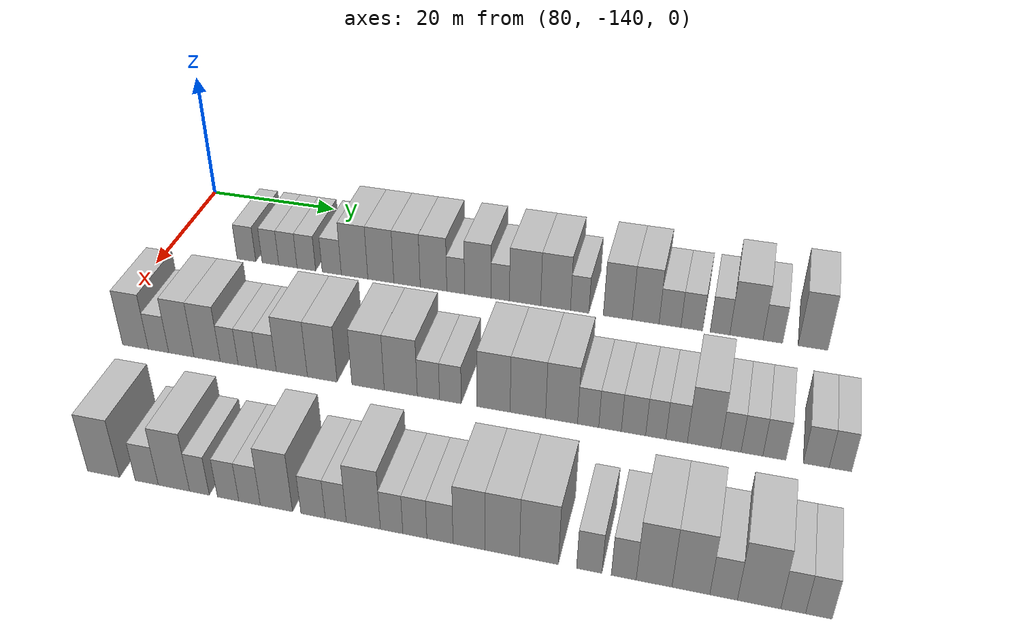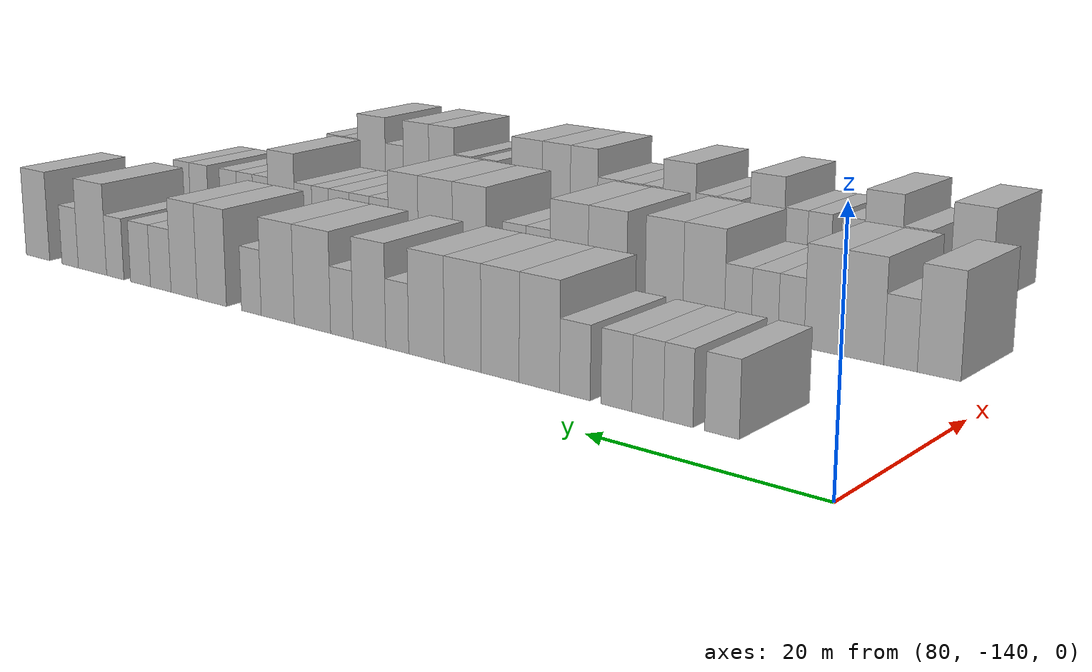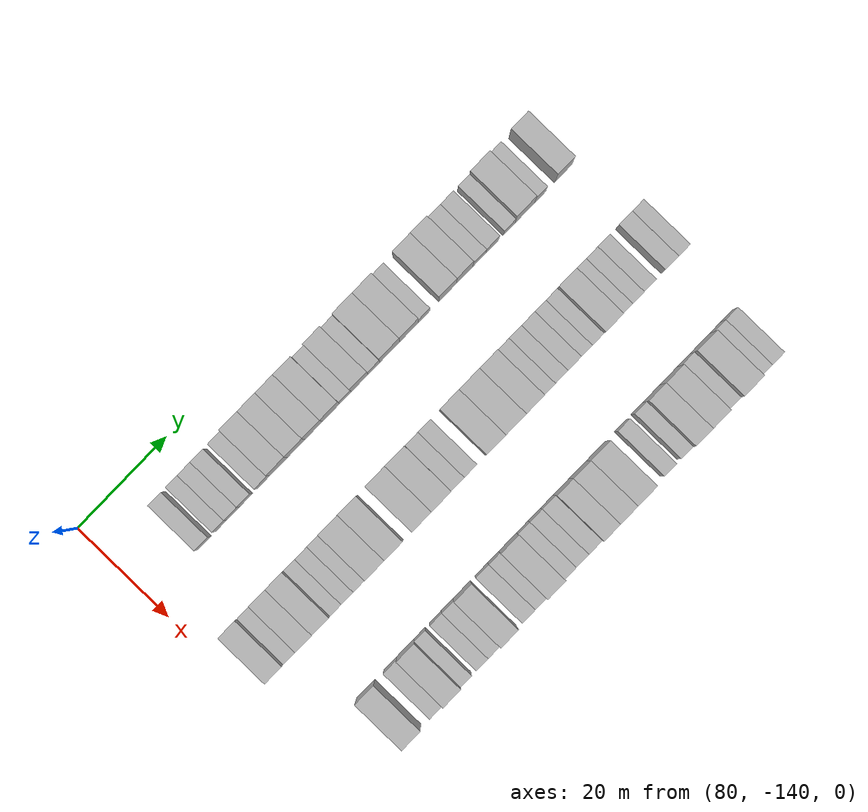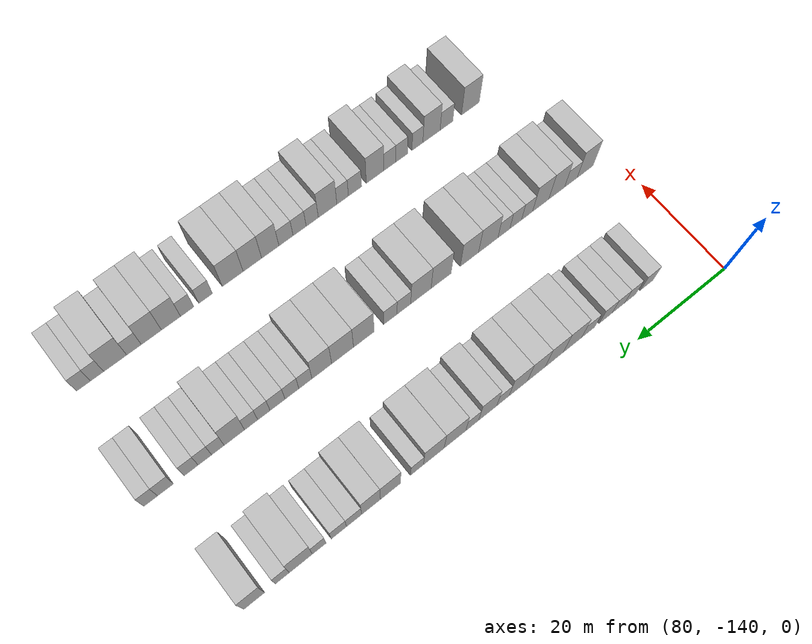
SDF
<sdf version="1.6">
 <world name="default">
  <model name="building_631">
   <static>1</static>
   <pose>91.0000 -127.6711 0 0.000000 0.000000 0.000000</pose>
   <link name="link">
    <pose>0 0 3.00 0 0 0</pose>
    <collision name="collision"><geometry><box><size>10.0000 2.9213 6.0000</size></box></geometry></collision>
    <visual name="visual">
     <cast_shadows>0</cast_shadows>
     <geometry><box><size>10.0000 2.9213 6.0000</size></box></geometry>
     <material>
      <script>
       <uri>model://HANNAS_wall/materials/scripts</uri>
       <uri>model://HANNAS_wall/materials/textures</uri>
       <name>vrc/HANNAS_wall</name>
      </script>
     </material>
    </visual>
   </link>
  </model>
  <model name="building_632">
   <static>1</static>
   <pose>91.0000 -123.9136 0 0.000000 0.000000 0.000000</pose>
   <link name="link">
    <pose>0 0 3.00 0 0 0</pose>
    <collision name="collision"><geometry><box><size>10.0000 2.5935 6.0000</size></box></geometry></collision>
    <visual name="visual">
     <cast_shadows>0</cast_shadows>
     <geometry><box><size>10.0000 2.5935 6.0000</size></box></geometry>
     <material>
      <script>
       <uri>model://HANNAS_wall/materials/scripts</uri>
       <uri>model://HANNAS_wall/materials/textures</uri>
       <name>vrc/HANNAS_wall</name>
      </script>
     </material>
    </visual>
   </link>
  </model>
  <model name="building_633">
   <static>1</static>
   <pose>91.0000 -121.2052 0 0.000000 0.000000 0.000000</pose>
   <link name="link">
    <pose>0 0 3.00 0 0 0</pose>
    <collision name="collision"><geometry><box><size>10.0000 2.8233 6.0000</size></box></geometry></collision>
    <visual name="visual">
     <cast_shadows>0</cast_shadows>
     <geometry><box><size>10.0000 2.8233 6.0000</size></box></geometry>
     <material>
      <script>
       <uri>model://HANNAS_wall/materials/scripts</uri>
       <uri>model://HANNAS_wall/materials/textures</uri>
       <name>vrc/HANNAS_wall</name>
      </script>
     </material>
    </visual>
   </link>
  </model>
  <model name="building_634">
   <static>1</static>
   <pose>91.0000 -118.3632 0 0.000000 0.000000 0.000000</pose>
   <link name="link">
    <pose>0 0 3.00 0 0 0</pose>
    <collision name="collision"><geometry><box><size>10.0000 2.8609 6.0000</size></box></geometry></collision>
    <visual name="visual">
     <cast_shadows>0</cast_shadows>
     <geometry><box><size>10.0000 2.8609 6.0000</size></box></geometry>
     <material>
      <script>
       <uri>model://HANNAS_wall/materials/scripts</uri>
       <uri>model://HANNAS_wall/materials/textures</uri>
       <name>vrc/HANNAS_wall</name>
      </script>
     </material>
    </visual>
   </link>
  </model>
  <model name="building_635">
   <static>1</static>
   <pose>91.0000 -114.4702 0 0.000000 0.000000 0.000000</pose>
   <link name="link">
    <pose>0 0 3.00 0 0 0</pose>
    <collision name="collision"><geometry><box><size>10.0000 2.9251 6.0000</size></box></geometry></collision>
    <visual name="visual">
     <cast_shadows>0</cast_shadows>
     <geometry><box><size>10.0000 2.9251 6.0000</size></box></geometry>
     <material>
      <script>
       <uri>model://HANNAS_wall/materials/scripts</uri>
       <uri>model://HANNAS_wall/materials/textures</uri>
       <name>vrc/HANNAS_wall</name>
      </script>
     </material>
    </visual>
   </link>
  </model>
  <model name="building_636">
   <static>1</static>
   <pose>91.0000 -111.0083 0 0.000000 0.000000 0.000000</pose>
   <link name="link">
    <pose>0 0 4.50 0 0 0</pose>
    <collision name="collision"><geometry><box><size>10.0000 3.9987 9.0000</size></box></geometry></collision>
    <visual name="visual">
     <cast_shadows>0</cast_shadows>
     <geometry><box><size>10.0000 3.9987 9.0000</size></box></geometry>
     <material>
      <script>
       <uri>model://HANNAS_wall/materials/scripts</uri>
       <uri>model://HANNAS_wall/materials/textures</uri>
       <name>vrc/HANNAS_wall</name>
      </script>
     </material>
    </visual>
   </link>
  </model>
  <model name="building_637">
   <static>1</static>
   <pose>91.0000 -107.0593 0 0.000000 0.000000 0.000000</pose>
   <link name="link">
    <pose>0 0 4.50 0 0 0</pose>
    <collision name="collision"><geometry><box><size>10.0000 3.8993 9.0000</size></box></geometry></collision>
    <visual name="visual">
     <cast_shadows>0</cast_shadows>
     <geometry><box><size>10.0000 3.8993 9.0000</size></box></geometry>
     <material>
      <script>
       <uri>model://HANNAS_wall/materials/scripts</uri>
       <uri>model://HANNAS_wall/materials/textures</uri>
       <name>vrc/HANNAS_wall</name>
      </script>
     </material>
    </visual>
   </link>
  </model>
  <model name="building_638">
   <static>1</static>
   <pose>91.0000 -103.1571 0 0.000000 0.000000 0.000000</pose>
   <link name="link">
    <pose>0 0 4.50 0 0 0</pose>
    <collision name="collision"><geometry><box><size>10.0000 3.9052 9.0000</size></box></geometry></collision>
    <visual name="visual">
     <cast_shadows>0</cast_shadows>
     <geometry><box><size>10.0000 3.9052 9.0000</size></box></geometry>
     <material>
      <script>
       <uri>model://HANNAS_wall/materials/scripts</uri>
       <uri>model://HANNAS_wall/materials/textures</uri>
       <name>vrc/HANNAS_wall</name>
      </script>
     </material>
    </visual>
   </link>
  </model>
  <model name="building_639">
   <static>1</static>
   <pose>91.0000 -99.2516 0 0.000000 0.000000 0.000000</pose>
   <link name="link">
    <pose>0 0 4.50 0 0 0</pose>
    <collision name="collision"><geometry><box><size>10.0000 3.9057 9.0000</size></box></geometry></collision>
    <visual name="visual">
     <cast_shadows>0</cast_shadows>
     <geometry><box><size>10.0000 3.9057 9.0000</size></box></geometry>
     <material>
      <script>
       <uri>model://HANNAS_wall/materials/scripts</uri>
       <uri>model://HANNAS_wall/materials/textures</uri>
       <name>vrc/HANNAS_wall</name>
      </script>
     </material>
    </visual>
   </link>
  </model>
  <model name="building_640">
   <static>1</static>
   <pose>91.0000 -96.0052 0 0.000000 0.000000 0.000000</pose>
   <link name="link">
    <pose>0 0 3.00 0 0 0</pose>
    <collision name="collision"><geometry><box><size>10.0000 2.5872 6.0000</size></box></geometry></collision>
    <visual name="visual">
     <cast_shadows>0</cast_shadows>
     <geometry><box><size>10.0000 2.5872 6.0000</size></box></geometry>
     <material>
      <script>
       <uri>model://HANNAS_wall/materials/scripts</uri>
       <uri>model://HANNAS_wall/materials/textures</uri>
       <name>vrc/HANNAS_wall</name>
      </script>
     </material>
    </visual>
   </link>
  </model>
  <model name="building_641">
   <static>1</static>
   <pose>91.0000 -92.8108 0 0.000000 0.000000 0.000000</pose>
   <link name="link">
    <pose>0 0 4.50 0 0 0</pose>
    <collision name="collision"><geometry><box><size>10.0000 3.8016 9.0000</size></box></geometry></collision>
    <visual name="visual">
     <cast_shadows>0</cast_shadows>
     <geometry><box><size>10.0000 3.8016 9.0000</size></box></geometry>
     <material>
      <script>
       <uri>model://HANNAS_wall/materials/scripts</uri>
       <uri>model://HANNAS_wall/materials/textures</uri>
       <name>vrc/HANNAS_wall</name>
      </script>
     </material>
    </visual>
   </link>
  </model>
  <model name="building_642">
   <static>1</static>
   <pose>91.0000 -89.5830 0 0.000000 0.000000 0.000000</pose>
   <link name="link">
    <pose>0 0 3.00 0 0 0</pose>
    <collision name="collision"><geometry><box><size>10.0000 2.6540 6.0000</size></box></geometry></collision>
    <visual name="visual">
     <cast_shadows>0</cast_shadows>
     <geometry><box><size>10.0000 2.6540 6.0000</size></box></geometry>
     <material>
      <script>
       <uri>model://HANNAS_wall/materials/scripts</uri>
       <uri>model://HANNAS_wall/materials/textures</uri>
       <name>vrc/HANNAS_wall</name>
      </script>
     </material>
    </visual>
   </link>
  </model>
  <model name="building_643">
   <static>1</static>
   <pose>91.0000 -86.0280 0 0.000000 0.000000 0.000000</pose>
   <link name="link">
    <pose>0 0 4.50 0 0 0</pose>
    <collision name="collision"><geometry><box><size>10.0000 4.4561 9.0000</size></box></geometry></collision>
    <visual name="visual">
     <cast_shadows>0</cast_shadows>
     <geometry><box><size>10.0000 4.4561 9.0000</size></box></geometry>
     <material>
      <script>
       <uri>model://HANNAS_wall/materials/scripts</uri>
       <uri>model://HANNAS_wall/materials/textures</uri>
       <name>vrc/HANNAS_wall</name>
      </script>
     </material>
    </visual>
   </link>
  </model>
  <model name="building_644">
   <static>1</static>
   <pose>91.0000 -81.6980 0 0.000000 0.000000 0.000000</pose>
   <link name="link">
    <pose>0 0 4.50 0 0 0</pose>
    <collision name="collision"><geometry><box><size>10.0000 4.2038 9.0000</size></box></geometry></collision>
    <visual name="visual">
     <cast_shadows>0</cast_shadows>
     <geometry><box><size>10.0000 4.2038 9.0000</size></box></geometry>
     <material>
      <script>
       <uri>model://HANNAS_wall/materials/scripts</uri>
       <uri>model://HANNAS_wall/materials/textures</uri>
       <name>vrc/HANNAS_wall</name>
      </script>
     </material>
    </visual>
   </link>
  </model>
  <model name="building_645">
   <static>1</static>
   <pose>91.0000 -78.3045 0 0.000000 0.000000 0.000000</pose>
   <link name="link">
    <pose>0 0 3.00 0 0 0</pose>
    <collision name="collision"><geometry><box><size>10.0000 2.5831 6.0000</size></box></geometry></collision>
    <visual name="visual">
     <cast_shadows>0</cast_shadows>
     <geometry><box><size>10.0000 2.5831 6.0000</size></box></geometry>
     <material>
      <script>
       <uri>model://HANNAS_wall/materials/scripts</uri>
       <uri>model://HANNAS_wall/materials/textures</uri>
       <name>vrc/HANNAS_wall</name>
      </script>
     </material>
    </visual>
   </link>
  </model>
  <model name="building_646">
   <static>1</static>
   <pose>91.0000 -73.0229 0 0.000000 0.000000 0.000000</pose>
   <link name="link">
    <pose>0 0 4.50 0 0 0</pose>
    <collision name="collision"><geometry><box><size>10.0000 3.9801 9.0000</size></box></geometry></collision>
    <visual name="visual">
     <cast_shadows>0</cast_shadows>
     <geometry><box><size>10.0000 3.9801 9.0000</size></box></geometry>
     <material>
      <script>
       <uri>model://HANNAS_wall/materials/scripts</uri>
       <uri>model://HANNAS_wall/materials/textures</uri>
       <name>vrc/HANNAS_wall</name>
      </script>
     </material>
    </visual>
   </link>
  </model>
  <model name="building_647">
   <static>1</static>
   <pose>91.0000 -69.1997 0 0.000000 0.000000 0.000000</pose>
   <link name="link">
    <pose>0 0 4.50 0 0 0</pose>
    <collision name="collision"><geometry><box><size>10.0000 3.6661 9.0000</size></box></geometry></collision>
    <visual name="visual">
     <cast_shadows>0</cast_shadows>
     <geometry><box><size>10.0000 3.6661 9.0000</size></box></geometry>
     <material>
      <script>
       <uri>model://HANNAS_wall/materials/scripts</uri>
       <uri>model://HANNAS_wall/materials/textures</uri>
       <name>vrc/HANNAS_wall</name>
      </script>
     </material>
    </visual>
   </link>
  </model>
  <model name="building_648">
   <static>1</static>
   <pose>91.0000 -65.8845 0 0.000000 0.000000 0.000000</pose>
   <link name="link">
    <pose>0 0 3.00 0 0 0</pose>
    <collision name="collision"><geometry><box><size>10.0000 2.9644 6.0000</size></box></geometry></collision>
    <visual name="visual">
     <cast_shadows>0</cast_shadows>
     <geometry><box><size>10.0000 2.9644 6.0000</size></box></geometry>
     <material>
      <script>
       <uri>model://HANNAS_wall/materials/scripts</uri>
       <uri>model://HANNAS_wall/materials/textures</uri>
       <name>vrc/HANNAS_wall</name>
      </script>
     </material>
    </visual>
   </link>
  </model>
  <model name="building_649">
   <static>1</static>
   <pose>91.0000 -62.9382 0 0.000000 0.000000 0.000000</pose>
   <link name="link">
    <pose>0 0 3.00 0 0 0</pose>
    <collision name="collision"><geometry><box><size>10.0000 2.9282 6.0000</size></box></geometry></collision>
    <visual name="visual">
     <cast_shadows>0</cast_shadows>
     <geometry><box><size>10.0000 2.9282 6.0000</size></box></geometry>
     <material>
      <script>
       <uri>model://HANNAS_wall/materials/scripts</uri>
       <uri>model://HANNAS_wall/materials/textures</uri>
       <name>vrc/HANNAS_wall</name>
      </script>
     </material>
    </visual>
   </link>
  </model>
  <model name="building_650">
   <static>1</static>
   <pose>91.0000 -59.1673 0 0.000000 0.000000 0.000000</pose>
   <link name="link">
    <pose>0 0 3.00 0 0 0</pose>
    <collision name="collision"><geometry><box><size>10.0000 2.6135 6.0000</size></box></geometry></collision>
    <visual name="visual">
     <cast_shadows>0</cast_shadows>
     <geometry><box><size>10.0000 2.6135 6.0000</size></box></geometry>
     <material>
      <script>
       <uri>model://HANNAS_wall/materials/scripts</uri>
       <uri>model://HANNAS_wall/materials/textures</uri>
       <name>vrc/HANNAS_wall</name>
      </script>
     </material>
    </visual>
   </link>
  </model>
  <model name="building_651">
   <static>1</static>
   <pose>91.0000 -55.6685 0 0.000000 0.000000 0.000000</pose>
   <link name="link">
    <pose>0 0 4.50 0 0 0</pose>
    <collision name="collision"><geometry><box><size>10.0000 4.3841 9.0000</size></box></geometry></collision>
    <visual name="visual">
     <cast_shadows>0</cast_shadows>
     <geometry><box><size>10.0000 4.3841 9.0000</size></box></geometry>
     <material>
      <script>
       <uri>model://HANNAS_wall/materials/scripts</uri>
       <uri>model://HANNAS_wall/materials/textures</uri>
       <name>vrc/HANNAS_wall</name>
      </script>
     </material>
    </visual>
   </link>
  </model>
  <model name="building_652">
   <static>1</static>
   <pose>91.0000 -52.1764 0 0.000000 0.000000 0.000000</pose>
   <link name="link">
    <pose>0 0 3.00 0 0 0</pose>
    <collision name="collision"><geometry><box><size>10.0000 2.6001 6.0000</size></box></geometry></collision>
    <visual name="visual">
     <cast_shadows>0</cast_shadows>
     <geometry><box><size>10.0000 2.6001 6.0000</size></box></geometry>
     <material>
      <script>
       <uri>model://HANNAS_wall/materials/scripts</uri>
       <uri>model://HANNAS_wall/materials/textures</uri>
       <name>vrc/HANNAS_wall</name>
      </script>
     </material>
    </visual>
   </link>
  </model>
  <model name="building_653">
   <static>1</static>
   <pose>91.0000 -46.9492 0 0.000000 0.000000 0.000000</pose>
   <link name="link">
    <pose>0 0 4.50 0 0 0</pose>
    <collision name="collision"><geometry><box><size>10.0000 3.8543 9.0000</size></box></geometry></collision>
    <visual name="visual">
     <cast_shadows>0</cast_shadows>
     <geometry><box><size>10.0000 3.8543 9.0000</size></box></geometry>
     <material>
      <script>
       <uri>model://HANNAS_wall/materials/scripts</uri>
       <uri>model://HANNAS_wall/materials/textures</uri>
       <name>vrc/HANNAS_wall</name>
      </script>
     </material>
    </visual>
   </link>
  </model>
  <model name="building_817">
   <static>1</static>
   <pose>113.0000 -133.9622 0 0.000000 0.000000 0.000000</pose>
   <link name="link">
    <pose>0 0 4.50 0 0 0</pose>
    <collision name="collision"><geometry><box><size>10.0000 3.7363 9.0000</size></box></geometry></collision>
    <visual name="visual">
     <cast_shadows>0</cast_shadows>
     <geometry><box><size>10.0000 3.7363 9.0000</size></box></geometry>
     <material>
      <script>
       <uri>model://HANNAS_wall/materials/scripts</uri>
       <uri>model://HANNAS_wall/materials/textures</uri>
       <name>vrc/HANNAS_wall</name>
      </script>
     </material>
    </visual>
   </link>
  </model>
  <model name="building_818">
   <static>1</static>
   <pose>113.0000 -130.6216 0 0.000000 0.000000 0.000000</pose>
   <link name="link">
    <pose>0 0 3.00 0 0 0</pose>
    <collision name="collision"><geometry><box><size>10.0000 2.9450 6.0000</size></box></geometry></collision>
    <visual name="visual">
     <cast_shadows>0</cast_shadows>
     <geometry><box><size>10.0000 2.9450 6.0000</size></box></geometry>
     <material>
      <script>
       <uri>model://HANNAS_wall/materials/scripts</uri>
       <uri>model://HANNAS_wall/materials/textures</uri>
       <name>vrc/HANNAS_wall</name>
      </script>
     </material>
    </visual>
   </link>
  </model>
  <model name="building_819">
   <static>1</static>
   <pose>113.0000 -127.3381 0 0.000000 0.000000 0.000000</pose>
   <link name="link">
    <pose>0 0 4.50 0 0 0</pose>
    <collision name="collision"><geometry><box><size>10.0000 3.6219 9.0000</size></box></geometry></collision>
    <visual name="visual">
     <cast_shadows>0</cast_shadows>
     <geometry><box><size>10.0000 3.6219 9.0000</size></box></geometry>
     <material>
      <script>
       <uri>model://HANNAS_wall/materials/scripts</uri>
       <uri>model://HANNAS_wall/materials/textures</uri>
       <name>vrc/HANNAS_wall</name>
      </script>
     </material>
    </visual>
   </link>
  </model>
  <model name="building_820">
   <static>1</static>
   <pose>113.0000 -123.6641 0 0.000000 0.000000 0.000000</pose>
   <link name="link">
    <pose>0 0 4.50 0 0 0</pose>
    <collision name="collision"><geometry><box><size>10.0000 3.7261 9.0000</size></box></geometry></collision>
    <visual name="visual">
     <cast_shadows>0</cast_shadows>
     <geometry><box><size>10.0000 3.7261 9.0000</size></box></geometry>
     <material>
      <script>
       <uri>model://HANNAS_wall/materials/scripts</uri>
       <uri>model://HANNAS_wall/materials/textures</uri>
       <name>vrc/HANNAS_wall</name>
      </script>
     </material>
    </visual>
   </link>
  </model>
  <model name="building_821">
   <static>1</static>
   <pose>113.0000 -120.5521 0 0.000000 0.000000 0.000000</pose>
   <link name="link">
    <pose>0 0 3.00 0 0 0</pose>
    <collision name="collision"><geometry><box><size>10.0000 2.4980 6.0000</size></box></geometry></collision>
    <visual name="visual">
     <cast_shadows>0</cast_shadows>
     <geometry><box><size>10.0000 2.4980 6.0000</size></box></geometry>
     <material>
      <script>
       <uri>model://HANNAS_wall/materials/scripts</uri>
       <uri>model://HANNAS_wall/materials/textures</uri>
       <name>vrc/HANNAS_wall</name>
      </script>
     </material>
    </visual>
   </link>
  </model>
  <model name="building_822">
   <static>1</static>
   <pose>113.0000 -117.9775 0 0.000000 0.000000 0.000000</pose>
   <link name="link">
    <pose>0 0 3.00 0 0 0</pose>
    <collision name="collision"><geometry><box><size>10.0000 2.6511 6.0000</size></box></geometry></collision>
    <visual name="visual">
     <cast_shadows>0</cast_shadows>
     <geometry><box><size>10.0000 2.6511 6.0000</size></box></geometry>
     <material>
      <script>
       <uri>model://HANNAS_wall/materials/scripts</uri>
       <uri>model://HANNAS_wall/materials/textures</uri>
       <name>vrc/HANNAS_wall</name>
      </script>
     </material>
    </visual>
   </link>
  </model>
  <model name="building_823">
   <static>1</static>
   <pose>113.0000 -115.3186 0 0.000000 0.000000 0.000000</pose>
   <link name="link">
    <pose>0 0 3.00 0 0 0</pose>
    <collision name="collision"><geometry><box><size>10.0000 2.6666 6.0000</size></box></geometry></collision>
    <visual name="visual">
     <cast_shadows>0</cast_shadows>
     <geometry><box><size>10.0000 2.6666 6.0000</size></box></geometry>
     <material>
      <script>
       <uri>model://HANNAS_wall/materials/scripts</uri>
       <uri>model://HANNAS_wall/materials/textures</uri>
       <name>vrc/HANNAS_wall</name>
      </script>
     </material>
    </visual>
   </link>
  </model>
  <model name="building_824">
   <static>1</static>
   <pose>113.0000 -111.8452 0 0.000000 0.000000 0.000000</pose>
   <link name="link">
    <pose>0 0 4.50 0 0 0</pose>
    <collision name="collision"><geometry><box><size>10.0000 4.2801 9.0000</size></box></geometry></collision>
    <visual name="visual">
     <cast_shadows>0</cast_shadows>
     <geometry><box><size>10.0000 4.2801 9.0000</size></box></geometry>
     <material>
      <script>
       <uri>model://HANNAS_wall/materials/scripts</uri>
       <uri>model://HANNAS_wall/materials/textures</uri>
       <name>vrc/HANNAS_wall</name>
      </script>
     </material>
    </visual>
   </link>
  </model>
  <model name="building_825">
   <static>1</static>
   <pose>113.0000 -107.6863 0 0.000000 0.000000 0.000000</pose>
   <link name="link">
    <pose>0 0 4.50 0 0 0</pose>
    <collision name="collision"><geometry><box><size>10.0000 4.0377 9.0000</size></box></geometry></collision>
    <visual name="visual">
     <cast_shadows>0</cast_shadows>
     <geometry><box><size>10.0000 4.0377 9.0000</size></box></geometry>
     <material>
      <script>
       <uri>model://HANNAS_wall/materials/scripts</uri>
       <uri>model://HANNAS_wall/materials/textures</uri>
       <name>vrc/HANNAS_wall</name>
      </script>
     </material>
    </visual>
   </link>
  </model>
  <model name="building_826">
   <static>1</static>
   <pose>113.0000 -101.5063 0 0.000000 0.000000 0.000000</pose>
   <link name="link">
    <pose>0 0 4.50 0 0 0</pose>
    <collision name="collision"><geometry><box><size>10.0000 4.3224 9.0000</size></box></geometry></collision>
    <visual name="visual">
     <cast_shadows>0</cast_shadows>
     <geometry><box><size>10.0000 4.3224 9.0000</size></box></geometry>
     <material>
      <script>
       <uri>model://HANNAS_wall/materials/scripts</uri>
       <uri>model://HANNAS_wall/materials/textures</uri>
       <name>vrc/HANNAS_wall</name>
      </script>
     </material>
    </visual>
   </link>
  </model>
  <model name="building_827">
   <static>1</static>
   <pose>113.0000 -97.1620 0 0.000000 0.000000 0.000000</pose>
   <link name="link">
    <pose>0 0 4.50 0 0 0</pose>
    <collision name="collision"><geometry><box><size>10.0000 4.3660 9.0000</size></box></geometry></collision>
    <visual name="visual">
     <cast_shadows>0</cast_shadows>
     <geometry><box><size>10.0000 4.3660 9.0000</size></box></geometry>
     <material>
      <script>
       <uri>model://HANNAS_wall/materials/scripts</uri>
       <uri>model://HANNAS_wall/materials/textures</uri>
       <name>vrc/HANNAS_wall</name>
      </script>
     </material>
    </visual>
   </link>
  </model>
  <model name="building_828">
   <static>1</static>
   <pose>113.0000 -93.5262 0 0.000000 0.000000 0.000000</pose>
   <link name="link">
    <pose>0 0 3.00 0 0 0</pose>
    <collision name="collision"><geometry><box><size>10.0000 2.9057 6.0000</size></box></geometry></collision>
    <visual name="visual">
     <cast_shadows>0</cast_shadows>
     <geometry><box><size>10.0000 2.9057 6.0000</size></box></geometry>
     <material>
      <script>
       <uri>model://HANNAS_wall/materials/scripts</uri>
       <uri>model://HANNAS_wall/materials/textures</uri>
       <name>vrc/HANNAS_wall</name>
      </script>
     </material>
    </visual>
   </link>
  </model>
  <model name="building_829">
   <static>1</static>
   <pose>113.0000 -90.6643 0 0.000000 0.000000 0.000000</pose>
   <link name="link">
    <pose>0 0 3.00 0 0 0</pose>
    <collision name="collision"><geometry><box><size>10.0000 2.8181 6.0000</size></box></geometry></collision>
    <visual name="visual">
     <cast_shadows>0</cast_shadows>
     <geometry><box><size>10.0000 2.8181 6.0000</size></box></geometry>
     <material>
      <script>
       <uri>model://HANNAS_wall/materials/scripts</uri>
       <uri>model://HANNAS_wall/materials/textures</uri>
       <name>vrc/HANNAS_wall</name>
      </script>
     </material>
    </visual>
   </link>
  </model>
  <model name="building_830">
   <static>1</static>
   <pose>113.0000 -85.1237 0 0.000000 0.000000 0.000000</pose>
   <link name="link">
    <pose>0 0 4.50 0 0 0</pose>
    <collision name="collision"><geometry><box><size>10.0000 4.2631 9.0000</size></box></geometry></collision>
    <visual name="visual">
     <cast_shadows>0</cast_shadows>
     <geometry><box><size>10.0000 4.2631 9.0000</size></box></geometry>
     <material>
      <script>
       <uri>model://HANNAS_wall/materials/scripts</uri>
       <uri>model://HANNAS_wall/materials/textures</uri>
       <name>vrc/HANNAS_wall</name>
      </script>
     </material>
    </visual>
   </link>
  </model>
  <model name="building_831">
   <static>1</static>
   <pose>113.0000 -80.7512 0 0.000000 0.000000 0.000000</pose>
   <link name="link">
    <pose>0 0 4.50 0 0 0</pose>
    <collision name="collision"><geometry><box><size>10.0000 4.4819 9.0000</size></box></geometry></collision>
    <visual name="visual">
     <cast_shadows>0</cast_shadows>
     <geometry><box><size>10.0000 4.4819 9.0000</size></box></geometry>
     <material>
      <script>
       <uri>model://HANNAS_wall/materials/scripts</uri>
       <uri>model://HANNAS_wall/materials/textures</uri>
       <name>vrc/HANNAS_wall</name>
      </script>
     </material>
    </visual>
   </link>
  </model>
  <model name="building_832">
   <static>1</static>
   <pose>113.0000 -76.5095 0 0.000000 0.000000 0.000000</pose>
   <link name="link">
    <pose>0 0 4.50 0 0 0</pose>
    <collision name="collision"><geometry><box><size>10.0000 4.0014 9.0000</size></box></geometry></collision>
    <visual name="visual">
     <cast_shadows>0</cast_shadows>
     <geometry><box><size>10.0000 4.0014 9.0000</size></box></geometry>
     <material>
      <script>
       <uri>model://HANNAS_wall/materials/scripts</uri>
       <uri>model://HANNAS_wall/materials/textures</uri>
       <name>vrc/HANNAS_wall</name>
      </script>
     </material>
    </visual>
   </link>
  </model>
  <model name="building_833">
   <static>1</static>
   <pose>113.0000 -73.1926 0 0.000000 0.000000 0.000000</pose>
   <link name="link">
    <pose>0 0 3.00 0 0 0</pose>
    <collision name="collision"><geometry><box><size>10.0000 2.6324 6.0000</size></box></geometry></collision>
    <visual name="visual">
     <cast_shadows>0</cast_shadows>
     <geometry><box><size>10.0000 2.6324 6.0000</size></box></geometry>
     <material>
      <script>
       <uri>model://HANNAS_wall/materials/scripts</uri>
       <uri>model://HANNAS_wall/materials/textures</uri>
       <name>vrc/HANNAS_wall</name>
      </script>
     </material>
    </visual>
   </link>
  </model>
  <model name="building_834">
   <static>1</static>
   <pose>113.0000 -70.4920 0 0.000000 0.000000 0.000000</pose>
   <link name="link">
    <pose>0 0 3.00 0 0 0</pose>
    <collision name="collision"><geometry><box><size>10.0000 2.7690 6.0000</size></box></geometry></collision>
    <visual name="visual">
     <cast_shadows>0</cast_shadows>
     <geometry><box><size>10.0000 2.7690 6.0000</size></box></geometry>
     <material>
      <script>
       <uri>model://HANNAS_wall/materials/scripts</uri>
       <uri>model://HANNAS_wall/materials/textures</uri>
       <name>vrc/HANNAS_wall</name>
      </script>
     </material>
    </visual>
   </link>
  </model>
  <model name="building_835">
   <static>1</static>
   <pose>113.0000 -67.6210 0 0.000000 0.000000 0.000000</pose>
   <link name="link">
    <pose>0 0 3.00 0 0 0</pose>
    <collision name="collision"><geometry><box><size>10.0000 2.9730 6.0000</size></box></geometry></collision>
    <visual name="visual">
     <cast_shadows>0</cast_shadows>
     <geometry><box><size>10.0000 2.9730 6.0000</size></box></geometry>
     <material>
      <script>
       <uri>model://HANNAS_wall/materials/scripts</uri>
       <uri>model://HANNAS_wall/materials/textures</uri>
       <name>vrc/HANNAS_wall</name>
      </script>
     </material>
    </visual>
   </link>
  </model>
  <model name="building_836">
   <static>1</static>
   <pose>113.0000 -64.9160 0 0.000000 0.000000 0.000000</pose>
   <link name="link">
    <pose>0 0 3.00 0 0 0</pose>
    <collision name="collision"><geometry><box><size>10.0000 2.4368 6.0000</size></box></geometry></collision>
    <visual name="visual">
     <cast_shadows>0</cast_shadows>
     <geometry><box><size>10.0000 2.4368 6.0000</size></box></geometry>
     <material>
      <script>
       <uri>model://HANNAS_wall/materials/scripts</uri>
       <uri>model://HANNAS_wall/materials/textures</uri>
       <name>vrc/HANNAS_wall</name>
      </script>
     </material>
    </visual>
   </link>
  </model>
  <model name="building_837">
   <static>1</static>
   <pose>113.0000 -62.4051 0 0.000000 0.000000 0.000000</pose>
   <link name="link">
    <pose>0 0 3.00 0 0 0</pose>
    <collision name="collision"><geometry><box><size>10.0000 2.5851 6.0000</size></box></geometry></collision>
    <visual name="visual">
     <cast_shadows>0</cast_shadows>
     <geometry><box><size>10.0000 2.5851 6.0000</size></box></geometry>
     <material>
      <script>
       <uri>model://HANNAS_wall/materials/scripts</uri>
       <uri>model://HANNAS_wall/materials/textures</uri>
       <name>vrc/HANNAS_wall</name>
      </script>
     </material>
    </visual>
   </link>
  </model>
  <model name="building_838">
   <static>1</static>
   <pose>113.0000 -59.1302 0 0.000000 0.000000 0.000000</pose>
   <link name="link">
    <pose>0 0 4.50 0 0 0</pose>
    <collision name="collision"><geometry><box><size>10.0000 3.9648 9.0000</size></box></geometry></collision>
    <visual name="visual">
     <cast_shadows>0</cast_shadows>
     <geometry><box><size>10.0000 3.9648 9.0000</size></box></geometry>
     <material>
      <script>
       <uri>model://HANNAS_wall/materials/scripts</uri>
       <uri>model://HANNAS_wall/materials/textures</uri>
       <name>vrc/HANNAS_wall</name>
      </script>
     </material>
    </visual>
   </link>
  </model>
  <model name="building_839">
   <static>1</static>
   <pose>113.0000 -55.9443 0 0.000000 0.000000 0.000000</pose>
   <link name="link">
    <pose>0 0 3.00 0 0 0</pose>
    <collision name="collision"><geometry><box><size>10.0000 2.4069 6.0000</size></box></geometry></collision>
    <visual name="visual">
     <cast_shadows>0</cast_shadows>
     <geometry><box><size>10.0000 2.4069 6.0000</size></box></geometry>
     <material>
      <script>
       <uri>model://HANNAS_wall/materials/scripts</uri>
       <uri>model://HANNAS_wall/materials/textures</uri>
       <name>vrc/HANNAS_wall</name>
      </script>
     </material>
    </visual>
   </link>
  </model>
  <model name="building_840">
   <static>1</static>
   <pose>113.0000 -53.4570 0 0.000000 0.000000 0.000000</pose>
   <link name="link">
    <pose>0 0 3.00 0 0 0</pose>
    <collision name="collision"><geometry><box><size>10.0000 2.5676 6.0000</size></box></geometry></collision>
    <visual name="visual">
     <cast_shadows>0</cast_shadows>
     <geometry><box><size>10.0000 2.5676 6.0000</size></box></geometry>
     <material>
      <script>
       <uri>model://HANNAS_wall/materials/scripts</uri>
       <uri>model://HANNAS_wall/materials/textures</uri>
       <name>vrc/HANNAS_wall</name>
      </script>
     </material>
    </visual>
   </link>
  </model>
  <model name="building_841">
   <static>1</static>
   <pose>113.0000 -50.8294 0 0.000000 0.000000 0.000000</pose>
   <link name="link">
    <pose>0 0 3.00 0 0 0</pose>
    <collision name="collision"><geometry><box><size>10.0000 2.6877 6.0000</size></box></geometry></collision>
    <visual name="visual">
     <cast_shadows>0</cast_shadows>
     <geometry><box><size>10.0000 2.6877 6.0000</size></box></geometry>
     <material>
      <script>
       <uri>model://HANNAS_wall/materials/scripts</uri>
       <uri>model://HANNAS_wall/materials/textures</uri>
       <name>vrc/HANNAS_wall</name>
      </script>
     </material>
    </visual>
   </link>
  </model>
  <model name="building_842">
   <static>1</static>
   <pose>113.0000 -46.0012 0 0.000000 0.000000 0.000000</pose>
   <link name="link">
    <pose>0 0 3.00 0 0 0</pose>
    <collision name="collision"><geometry><box><size>10.0000 2.9688 6.0000</size></box></geometry></collision>
    <visual name="visual">
     <cast_shadows>0</cast_shadows>
     <geometry><box><size>10.0000 2.9688 6.0000</size></box></geometry>
     <material>
      <script>
       <uri>model://HANNAS_wall/materials/scripts</uri>
       <uri>model://HANNAS_wall/materials/textures</uri>
       <name>vrc/HANNAS_wall</name>
      </script>
     </material>
    </visual>
   </link>
  </model>
  <model name="building_843">
   <static>1</static>
   <pose>113.0000 -43.2327 0 0.000000 0.000000 0.000000</pose>
   <link name="link">
    <pose>0 0 3.00 0 0 0</pose>
    <collision name="collision"><geometry><box><size>10.0000 2.5681 6.0000</size></box></geometry></collision>
    <visual name="visual">
     <cast_shadows>0</cast_shadows>
     <geometry><box><size>10.0000 2.5681 6.0000</size></box></geometry>
     <material>
      <script>
       <uri>model://HANNAS_wall/materials/scripts</uri>
       <uri>model://HANNAS_wall/materials/textures</uri>
       <name>vrc/HANNAS_wall</name>
      </script>
     </material>
    </visual>
   </link>
  </model>
  <model name="building_1000">
   <static>1</static>
   <pose>135.0000 -126.5295 0 0.000000 0.000000 0.000000</pose>
   <link name="link">
    <pose>0 0 4.50 0 0 0</pose>
    <collision name="collision"><geometry><box><size>10.0000 4.1172 9.0000</size></box></geometry></collision>
    <visual name="visual">
     <cast_shadows>0</cast_shadows>
     <geometry><box><size>10.0000 4.1172 9.0000</size></box></geometry>
     <material>
      <script>
       <uri>model://HANNAS_wall/materials/scripts</uri>
       <uri>model://HANNAS_wall/materials/textures</uri>
       <name>vrc/HANNAS_wall</name>
      </script>
     </material>
    </visual>
   </link>
  </model>
  <model name="building_1001">
   <static>1</static>
   <pose>135.0000 -121.0086 0 0.000000 0.000000 0.000000</pose>
   <link name="link">
    <pose>0 0 3.00 0 0 0</pose>
    <collision name="collision"><geometry><box><size>10.0000 2.9244 6.0000</size></box></geometry></collision>
    <visual name="visual">
     <cast_shadows>0</cast_shadows>
     <geometry><box><size>10.0000 2.9244 6.0000</size></box></geometry>
     <material>
      <script>
       <uri>model://HANNAS_wall/materials/scripts</uri>
       <uri>model://HANNAS_wall/materials/textures</uri>
       <name>vrc/HANNAS_wall</name>
      </script>
     </material>
    </visual>
   </link>
  </model>
  <model name="building_1002">
   <static>1</static>
   <pose>135.0000 -117.5826 0 0.000000 0.000000 0.000000</pose>
   <link name="link">
    <pose>0 0 4.50 0 0 0</pose>
    <collision name="collision"><geometry><box><size>10.0000 3.9277 9.0000</size></box></geometry></collision>
    <visual name="visual">
     <cast_shadows>0</cast_shadows>
     <geometry><box><size>10.0000 3.9277 9.0000</size></box></geometry>
     <material>
      <script>
       <uri>model://HANNAS_wall/materials/scripts</uri>
       <uri>model://HANNAS_wall/materials/textures</uri>
       <name>vrc/HANNAS_wall</name>
      </script>
     </material>
    </visual>
   </link>
  </model>
  <model name="building_1003">
   <static>1</static>
   <pose>135.0000 -114.3915 0 0.000000 0.000000 0.000000</pose>
   <link name="link">
    <pose>0 0 3.00 0 0 0</pose>
    <collision name="collision"><geometry><box><size>10.0000 2.4545 6.0000</size></box></geometry></collision>
    <visual name="visual">
     <cast_shadows>0</cast_shadows>
     <geometry><box><size>10.0000 2.4545 6.0000</size></box></geometry>
     <material>
      <script>
       <uri>model://HANNAS_wall/materials/scripts</uri>
       <uri>model://HANNAS_wall/materials/textures</uri>
       <name>vrc/HANNAS_wall</name>
      </script>
     </material>
    </visual>
   </link>
  </model>
  <model name="building_1004">
   <static>1</static>
   <pose>135.0000 -110.8465 0 0.000000 0.000000 0.000000</pose>
   <link name="link">
    <pose>0 0 3.00 0 0 0</pose>
    <collision name="collision"><geometry><box><size>10.0000 2.6354 6.0000</size></box></geometry></collision>
    <visual name="visual">
     <cast_shadows>0</cast_shadows>
     <geometry><box><size>10.0000 2.6354 6.0000</size></box></geometry>
     <material>
      <script>
       <uri>model://HANNAS_wall/materials/scripts</uri>
       <uri>model://HANNAS_wall/materials/textures</uri>
       <name>vrc/HANNAS_wall</name>
      </script>
     </material>
    </visual>
   </link>
  </model>
  <model name="building_1005">
   <static>1</static>
   <pose>135.0000 -108.2102 0 0.000000 0.000000 0.000000</pose>
   <link name="link">
    <pose>0 0 3.00 0 0 0</pose>
    <collision name="collision"><geometry><box><size>10.0000 2.6373 6.0000</size></box></geometry></collision>
    <visual name="visual">
     <cast_shadows>0</cast_shadows>
     <geometry><box><size>10.0000 2.6373 6.0000</size></box></geometry>
     <material>
      <script>
       <uri>model://HANNAS_wall/materials/scripts</uri>
       <uri>model://HANNAS_wall/materials/textures</uri>
       <name>vrc/HANNAS_wall</name>
      </script>
     </material>
    </visual>
   </link>
  </model>
  <model name="building_1006">
   <static>1</static>
   <pose>135.0000 -104.9409 0 0.000000 0.000000 0.000000</pose>
   <link name="link">
    <pose>0 0 4.50 0 0 0</pose>
    <collision name="collision"><geometry><box><size>10.0000 3.9013 9.0000</size></box></geometry></collision>
    <visual name="visual">
     <cast_shadows>0</cast_shadows>
     <geometry><box><size>10.0000 3.9013 9.0000</size></box></geometry>
     <material>
      <script>
       <uri>model://HANNAS_wall/materials/scripts</uri>
       <uri>model://HANNAS_wall/materials/textures</uri>
       <name>vrc/HANNAS_wall</name>
      </script>
     </material>
    </visual>
   </link>
  </model>
  <model name="building_1007">
   <static>1</static>
   <pose>135.0000 -100.5396 0 0.000000 0.000000 0.000000</pose>
   <link name="link">
    <pose>0 0 3.00 0 0 0</pose>
    <collision name="collision"><geometry><box><size>10.0000 2.9012 6.0000</size></box></geometry></collision>
    <visual name="visual">
     <cast_shadows>0</cast_shadows>
     <geometry><box><size>10.0000 2.9012 6.0000</size></box></geometry>
     <material>
      <script>
       <uri>model://HANNAS_wall/materials/scripts</uri>
       <uri>model://HANNAS_wall/materials/textures</uri>
       <name>vrc/HANNAS_wall</name>
      </script>
     </material>
    </visual>
   </link>
  </model>
  <model name="building_1008">
   <static>1</static>
   <pose>135.0000 -97.8406 0 0.000000 0.000000 0.000000</pose>
   <link name="link">
    <pose>0 0 3.00 0 0 0</pose>
    <collision name="collision"><geometry><box><size>10.0000 2.4968 6.0000</size></box></geometry></collision>
    <visual name="visual">
     <cast_shadows>0</cast_shadows>
     <geometry><box><size>10.0000 2.4968 6.0000</size></box></geometry>
     <material>
      <script>
       <uri>model://HANNAS_wall/materials/scripts</uri>
       <uri>model://HANNAS_wall/materials/textures</uri>
       <name>vrc/HANNAS_wall</name>
      </script>
     </material>
    </visual>
   </link>
  </model>
  <model name="building_1009">
   <static>1</static>
   <pose>135.0000 -94.5940 0 0.000000 0.000000 0.000000</pose>
   <link name="link">
    <pose>0 0 4.50 0 0 0</pose>
    <collision name="collision"><geometry><box><size>10.0000 3.9965 9.0000</size></box></geometry></collision>
    <visual name="visual">
     <cast_shadows>0</cast_shadows>
     <geometry><box><size>10.0000 3.9965 9.0000</size></box></geometry>
     <material>
      <script>
       <uri>model://HANNAS_wall/materials/scripts</uri>
       <uri>model://HANNAS_wall/materials/textures</uri>
       <name>vrc/HANNAS_wall</name>
      </script>
     </material>
    </visual>
   </link>
  </model>
  <model name="building_1010">
   <static>1</static>
   <pose>135.0000 -91.2940 0 0.000000 0.000000 0.000000</pose>
   <link name="link">
    <pose>0 0 3.00 0 0 0</pose>
    <collision name="collision"><geometry><box><size>10.0000 2.6035 6.0000</size></box></geometry></collision>
    <visual name="visual">
     <cast_shadows>0</cast_shadows>
     <geometry><box><size>10.0000 2.6035 6.0000</size></box></geometry>
     <material>
      <script>
       <uri>model://HANNAS_wall/materials/scripts</uri>
       <uri>model://HANNAS_wall/materials/textures</uri>
       <name>vrc/HANNAS_wall</name>
      </script>
     </material>
    </visual>
   </link>
  </model>
  <model name="building_1011">
   <static>1</static>
   <pose>135.0000 -88.6078 0 0.000000 0.000000 0.000000</pose>
   <link name="link">
    <pose>0 0 3.00 0 0 0</pose>
    <collision name="collision"><geometry><box><size>10.0000 2.7689 6.0000</size></box></geometry></collision>
    <visual name="visual">
     <cast_shadows>0</cast_shadows>
     <geometry><box><size>10.0000 2.7689 6.0000</size></box></geometry>
     <material>
      <script>
       <uri>model://HANNAS_wall/materials/scripts</uri>
       <uri>model://HANNAS_wall/materials/textures</uri>
       <name>vrc/HANNAS_wall</name>
      </script>
     </material>
    </visual>
   </link>
  </model>
  <model name="building_1012">
   <static>1</static>
   <pose>135.0000 -85.7338 0 0.000000 0.000000 0.000000</pose>
   <link name="link">
    <pose>0 0 3.00 0 0 0</pose>
    <collision name="collision"><geometry><box><size>10.0000 2.9792 6.0000</size></box></geometry></collision>
    <visual name="visual">
     <cast_shadows>0</cast_shadows>
     <geometry><box><size>10.0000 2.9792 6.0000</size></box></geometry>
     <material>
      <script>
       <uri>model://HANNAS_wall/materials/scripts</uri>
       <uri>model://HANNAS_wall/materials/textures</uri>
       <name>vrc/HANNAS_wall</name>
      </script>
     </material>
    </visual>
   </link>
  </model>
  <model name="building_1013">
   <static>1</static>
   <pose>135.0000 -82.4360 0 0.000000 0.000000 0.000000</pose>
   <link name="link">
    <pose>0 0 4.50 0 0 0</pose>
    <collision name="collision"><geometry><box><size>10.0000 3.6163 9.0000</size></box></geometry></collision>
    <visual name="visual">
     <cast_shadows>0</cast_shadows>
     <geometry><box><size>10.0000 3.6163 9.0000</size></box></geometry>
     <material>
      <script>
       <uri>model://HANNAS_wall/materials/scripts</uri>
       <uri>model://HANNAS_wall/materials/textures</uri>
       <name>vrc/HANNAS_wall</name>
      </script>
     </material>
    </visual>
   </link>
  </model>
  <model name="building_1014">
   <static>1</static>
   <pose>135.0000 -78.7098 0 0.000000 0.000000 0.000000</pose>
   <link name="link">
    <pose>0 0 4.50 0 0 0</pose>
    <collision name="collision"><geometry><box><size>10.0000 3.8362 9.0000</size></box></geometry></collision>
    <visual name="visual">
     <cast_shadows>0</cast_shadows>
     <geometry><box><size>10.0000 3.8362 9.0000</size></box></geometry>
     <material>
      <script>
       <uri>model://HANNAS_wall/materials/scripts</uri>
       <uri>model://HANNAS_wall/materials/textures</uri>
       <name>vrc/HANNAS_wall</name>
      </script>
     </material>
    </visual>
   </link>
  </model>
  <model name="building_1015">
   <static>1</static>
   <pose>135.0000 -74.6498 0 0.000000 0.000000 0.000000</pose>
   <link name="link">
    <pose>0 0 4.50 0 0 0</pose>
    <collision name="collision"><geometry><box><size>10.0000 4.2838 9.0000</size></box></geometry></collision>
    <visual name="visual">
     <cast_shadows>0</cast_shadows>
     <geometry><box><size>10.0000 4.2838 9.0000</size></box></geometry>
     <material>
      <script>
       <uri>model://HANNAS_wall/materials/scripts</uri>
       <uri>model://HANNAS_wall/materials/textures</uri>
       <name>vrc/HANNAS_wall</name>
      </script>
     </material>
    </visual>
   </link>
  </model>
  <model name="building_1016">
   <static>1</static>
   <pose>135.0000 -69.1305 0 0.000000 0.000000 0.000000</pose>
   <link name="link">
    <pose>0 0 3.00 0 0 0</pose>
    <collision name="collision"><geometry><box><size>10.0000 2.7547 6.0000</size></box></geometry></collision>
    <visual name="visual">
     <cast_shadows>0</cast_shadows>
     <geometry><box><size>10.0000 2.7547 6.0000</size></box></geometry>
     <material>
      <script>
       <uri>model://HANNAS_wall/materials/scripts</uri>
       <uri>model://HANNAS_wall/materials/textures</uri>
       <name>vrc/HANNAS_wall</name>
      </script>
     </material>
    </visual>
   </link>
  </model>
  <model name="building_1017">
   <static>1</static>
   <pose>135.0000 -65.4201 0 0.000000 0.000000 0.000000</pose>
   <link name="link">
    <pose>0 0 3.00 0 0 0</pose>
    <collision name="collision"><geometry><box><size>10.0000 2.6663 6.0000</size></box></geometry></collision>
    <visual name="visual">
     <cast_shadows>0</cast_shadows>
     <geometry><box><size>10.0000 2.6663 6.0000</size></box></geometry>
     <material>
      <script>
       <uri>model://HANNAS_wall/materials/scripts</uri>
       <uri>model://HANNAS_wall/materials/textures</uri>
       <name>vrc/HANNAS_wall</name>
      </script>
     </material>
    </visual>
   </link>
  </model>
  <model name="building_1018">
   <static>1</static>
   <pose>135.0000 -62.1901 0 0.000000 0.000000 0.000000</pose>
   <link name="link">
    <pose>0 0 4.50 0 0 0</pose>
    <collision name="collision"><geometry><box><size>10.0000 3.7936 9.0000</size></box></geometry></collision>
    <visual name="visual">
     <cast_shadows>0</cast_shadows>
     <geometry><box><size>10.0000 3.7936 9.0000</size></box></geometry>
     <material>
      <script>
       <uri>model://HANNAS_wall/materials/scripts</uri>
       <uri>model://HANNAS_wall/materials/textures</uri>
       <name>vrc/HANNAS_wall</name>
      </script>
     </material>
    </visual>
   </link>
  </model>
  <model name="building_1019">
   <static>1</static>
   <pose>135.0000 -58.3117 0 0.000000 0.000000 0.000000</pose>
   <link name="link">
    <pose>0 0 4.50 0 0 0</pose>
    <collision name="collision"><geometry><box><size>10.0000 3.9631 9.0000</size></box></geometry></collision>
    <visual name="visual">
     <cast_shadows>0</cast_shadows>
     <geometry><box><size>10.0000 3.9631 9.0000</size></box></geometry>
     <material>
      <script>
       <uri>model://HANNAS_wall/materials/scripts</uri>
       <uri>model://HANNAS_wall/materials/textures</uri>
       <name>vrc/HANNAS_wall</name>
      </script>
     </material>
    </visual>
   </link>
  </model>
  <model name="building_1020">
   <static>1</static>
   <pose>135.0000 -54.9021 0 0.000000 0.000000 0.000000</pose>
   <link name="link">
    <pose>0 0 3.00 0 0 0</pose>
    <collision name="collision"><geometry><box><size>10.0000 2.8562 6.0000</size></box></geometry></collision>
    <visual name="visual">
     <cast_shadows>0</cast_shadows>
     <geometry><box><size>10.0000 2.8562 6.0000</size></box></geometry>
     <material>
      <script>
       <uri>model://HANNAS_wall/materials/scripts</uri>
       <uri>model://HANNAS_wall/materials/textures</uri>
       <name>vrc/HANNAS_wall</name>
      </script>
     </material>
    </visual>
   </link>
  </model>
  <model name="building_1021">
   <static>1</static>
   <pose>135.0000 -51.2547 0 0.000000 0.000000 0.000000</pose>
   <link name="link">
    <pose>0 0 4.50 0 0 0</pose>
    <collision name="collision"><geometry><box><size>10.0000 4.4386 9.0000</size></box></geometry></collision>
    <visual name="visual">
     <cast_shadows>0</cast_shadows>
     <geometry><box><size>10.0000 4.4386 9.0000</size></box></geometry>
     <material>
      <script>
       <uri>model://HANNAS_wall/materials/scripts</uri>
       <uri>model://HANNAS_wall/materials/textures</uri>
       <name>vrc/HANNAS_wall</name>
      </script>
     </material>
    </visual>
   </link>
  </model>
  <model name="building_1022">
   <static>1</static>
   <pose>135.0000 -47.7823 0 0.000000 0.000000 0.000000</pose>
   <link name="link">
    <pose>0 0 3.00 0 0 0</pose>
    <collision name="collision"><geometry><box><size>10.0000 2.5061 6.0000</size></box></geometry></collision>
    <visual name="visual">
     <cast_shadows>0</cast_shadows>
     <geometry><box><size>10.0000 2.5061 6.0000</size></box></geometry>
     <material>
      <script>
       <uri>model://HANNAS_wall/materials/scripts</uri>
       <uri>model://HANNAS_wall/materials/textures</uri>
       <name>vrc/HANNAS_wall</name>
      </script>
     </material>
    </visual>
   </link>
  </model>
  <model name="building_1023">
   <static>1</static>
   <pose>135.0000 -45.1866 0 0.000000 0.000000 0.000000</pose>
   <link name="link">
    <pose>0 0 3.00 0 0 0</pose>
    <collision name="collision"><geometry><box><size>10.0000 2.6854 6.0000</size></box></geometry></collision>
    <visual name="visual">
     <cast_shadows>0</cast_shadows>
     <geometry><box><size>10.0000 2.6854 6.0000</size></box></geometry>
     <material>
      <script>
       <uri>model://HANNAS_wall/materials/scripts</uri>
       <uri>model://HANNAS_wall/materials/textures</uri>
       <name>vrc/HANNAS_wall</name>
      </script>
     </material>
    </visual>
   </link>
  </model>
 </world>
</sdf>
